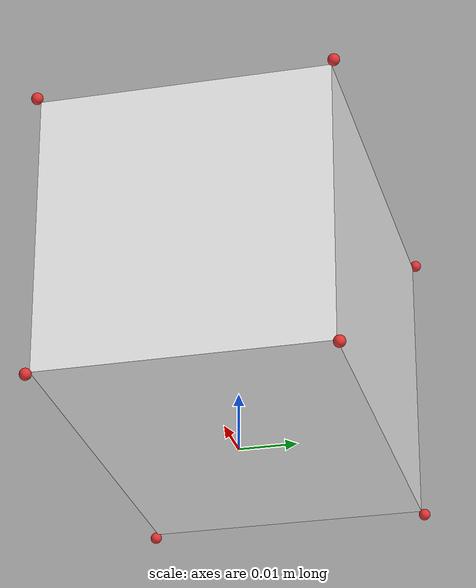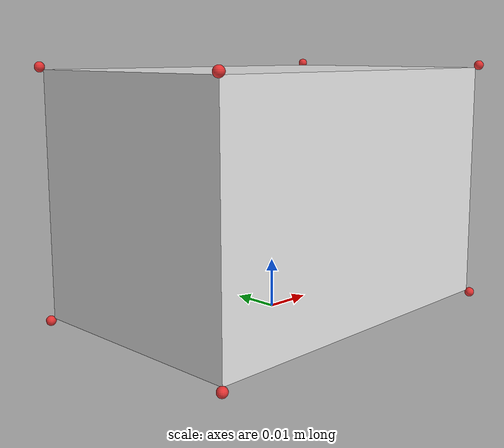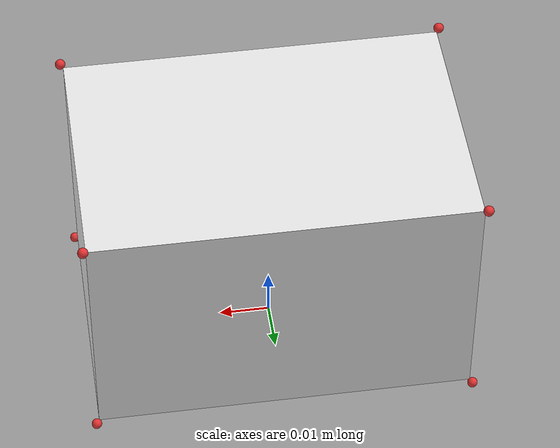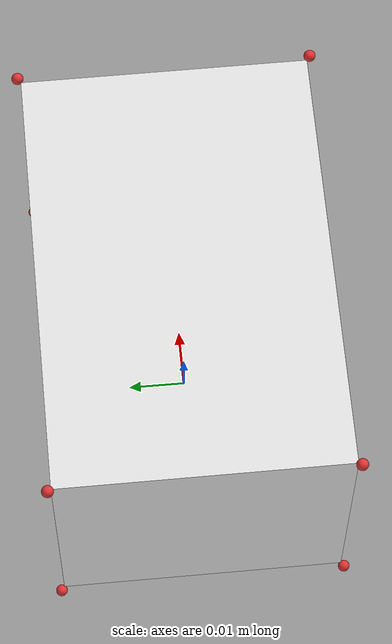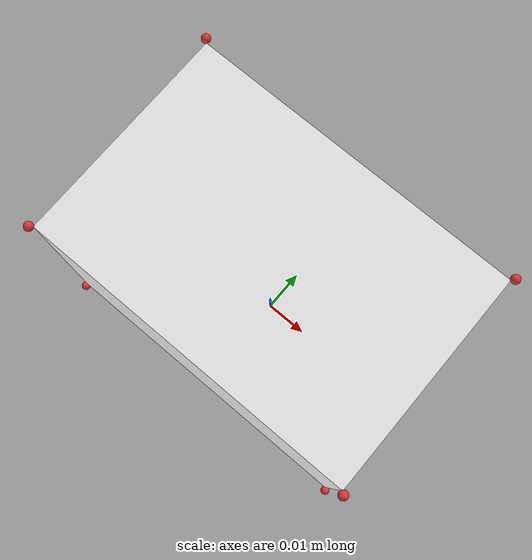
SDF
<?xml version="1.0"?>
<sdf version="1.7">
  <model name="foam_brick">
    <link name="base_link">
      <inertial>
        <pose>0 0 0.025 0 0 0 </pose>
        <mass>0.028</mass>
        <inertia>
          <ixx>1.17e-5</ixx>
          <ixy>0</ixy>
          <ixz>0</ixz>
          <iyy>1.9e-5</iyy>
          <iyz>0</iyz>
          <izz>1.9e-5</izz>
        </inertia>
      </inertial>
      <collision name="box_collision">
        <pose>0 0 0.025 0 0 0</pose>
        <geometry>
          <box>
            <size>0.074 0.049 0.049</size>
          </box>
        </geometry>
        <material>
          <diffuse>0 1 0 1.0</diffuse>
        </material>
      </collision>
      <collision name="point_collision1">
        <pose>0.0375 0.025 0 0 0 0</pose>
        <geometry>
          <sphere>
            <radius>1e-7</radius>
          </sphere>
        </geometry>
      </collision>
      <collision name="point_collision2">
        <pose>0.0375 -0.025 0 0 0 0</pose>
        <geometry>
          <sphere>
            <radius>1e-7</radius>
          </sphere>
        </geometry>
      </collision>
      <collision name="point_collision3">
        <pose>-0.0375 0.025 0 0 0 0</pose>
        <geometry>
          <sphere>
            <radius>1e-7</radius>
          </sphere>
        </geometry>
      </collision>
      <collision name="point_collision4">
        <pose>-0.0375 -0.025 0 0 0 0</pose>
        <geometry>
          <sphere>
            <radius>1e-7</radius>
          </sphere>
        </geometry>
      </collision>
      <collision name="point_collision5">
        <pose>0.0375 0.025 0.05 0 0 0</pose>
        <geometry>
          <sphere>
            <radius>1e-7</radius>
          </sphere>
        </geometry>
      </collision>
      <collision name="point_collision6">
        <pose>0.0375 -0.025 0.05 0 0 0</pose>
        <geometry>
          <sphere>
            <radius>1e-7</radius>
          </sphere>
        </geometry>
      </collision>
      <collision name="point_collision7">
        <pose>-0.0375 0.025 0.05 0 0 0</pose>
        <geometry>
          <sphere>
            <radius>1e-7</radius>
          </sphere>
        </geometry>
      </collision>
      <collision name="point_collision8">
        <pose>-0.0375 -0.025 0.05 0 0 0</pose>
        <geometry>
          <sphere>
            <radius>1e-7</radius>
          </sphere>
        </geometry>
      </collision>

      <!--
      Use the collision elements (with sphere radius exaggerated) as visual elements, too.
      -->
      <visual name="box_collision">
        <pose>0 0 0.025 0 0 0</pose>
        <geometry>
          <box>
            <size>0.074 0.049 0.049</size>
          </box>
        </geometry>
        <material>
          <diffuse>.9 .9 .9 1.0</diffuse>
        </material>
      </visual>
      <visual name="point_collision1">
        <pose>0.0375 0.025 0 0 0 0</pose>
        <geometry>
          <sphere>
            <radius>1e-3</radius>
          </sphere>
        </geometry>
        <material>
          <diffuse>.9 .2 .2 1.0</diffuse>
        </material>
      </visual>
      <visual name="point_collision2">
        <pose>0.0375 -0.025 0 0 0 0</pose>
        <geometry>
          <sphere>
            <radius>1e-3</radius>
          </sphere>
        </geometry>
        <material>
          <diffuse>.9 .2 .2 1.0</diffuse>
        </material>
      </visual>
      <visual name="point_collision3">
        <pose>-0.0375 0.025 0 0 0 0</pose>
        <geometry>
          <sphere>
            <radius>1e-3</radius>
          </sphere>
        </geometry>
        <material>
          <diffuse>.9 .2 .2 1.0</diffuse>
        </material>
      </visual>
      <visual name="point_collision4">
        <pose>-0.0375 -0.025 0 0 0 0</pose>
        <geometry>
          <sphere>
            <radius>1e-3</radius>
          </sphere>
        </geometry>
        <material>
          <diffuse>.9 .2 .2 1.0</diffuse>
        </material>
      </visual>
      <visual name="point_collision5">
        <pose>0.0375 0.025 0.05 0 0 0</pose>
        <geometry>
          <sphere>
            <radius>1e-3</radius>
          </sphere>
        </geometry>
        <material>
          <diffuse>.9 .2 .2 1.0</diffuse>
        </material>
      </visual>
      <visual name="point_collision6">
        <pose>0.0375 -0.025 0.05 0 0 0</pose>
        <geometry>
          <sphere>
            <radius>1e-3</radius>
          </sphere>
        </geometry>
        <material>
          <diffuse>.9 .2 .2 1.0</diffuse>
        </material>
      </visual>
      <visual name="point_collision7">
        <pose>-0.0375 0.025 0.05 0 0 0</pose>
        <geometry>
          <sphere>
            <radius>1e-3</radius>
          </sphere>
        </geometry>
        <material>
          <diffuse>.9 .2 .2 1.0</diffuse>
        </material>
      </visual>
      <visual name="point_collision8">
        <pose>-0.0375 -0.025 0.05 0 0 0</pose>
        <geometry>
          <sphere>
            <radius>1e-3</radius>
          </sphere>
        </geometry>
        <material>
          <diffuse>.9 .2 .2 1.0</diffuse>
        </material>
      </visual>
    </link>
  </model>
</sdf>
